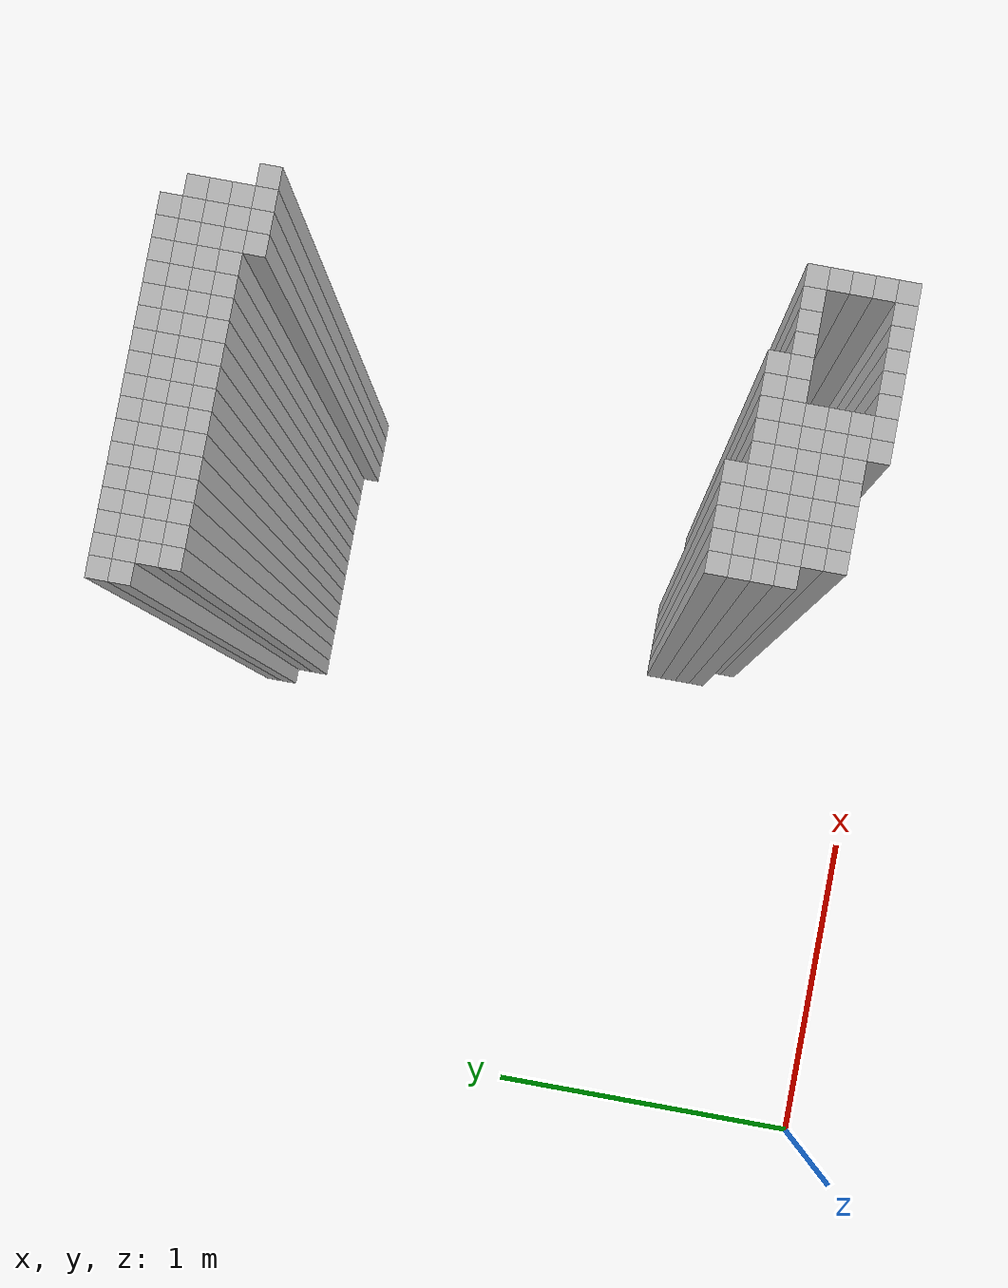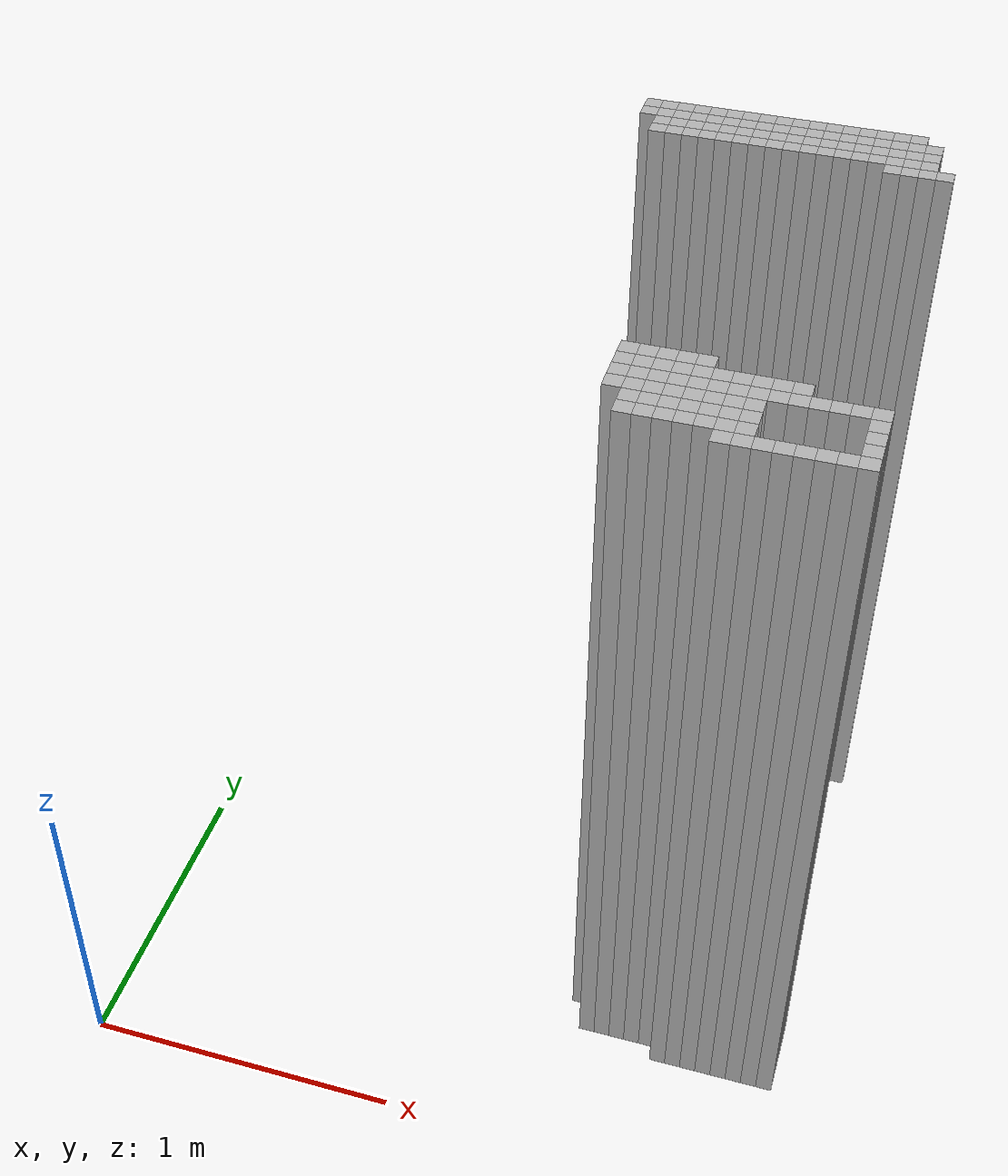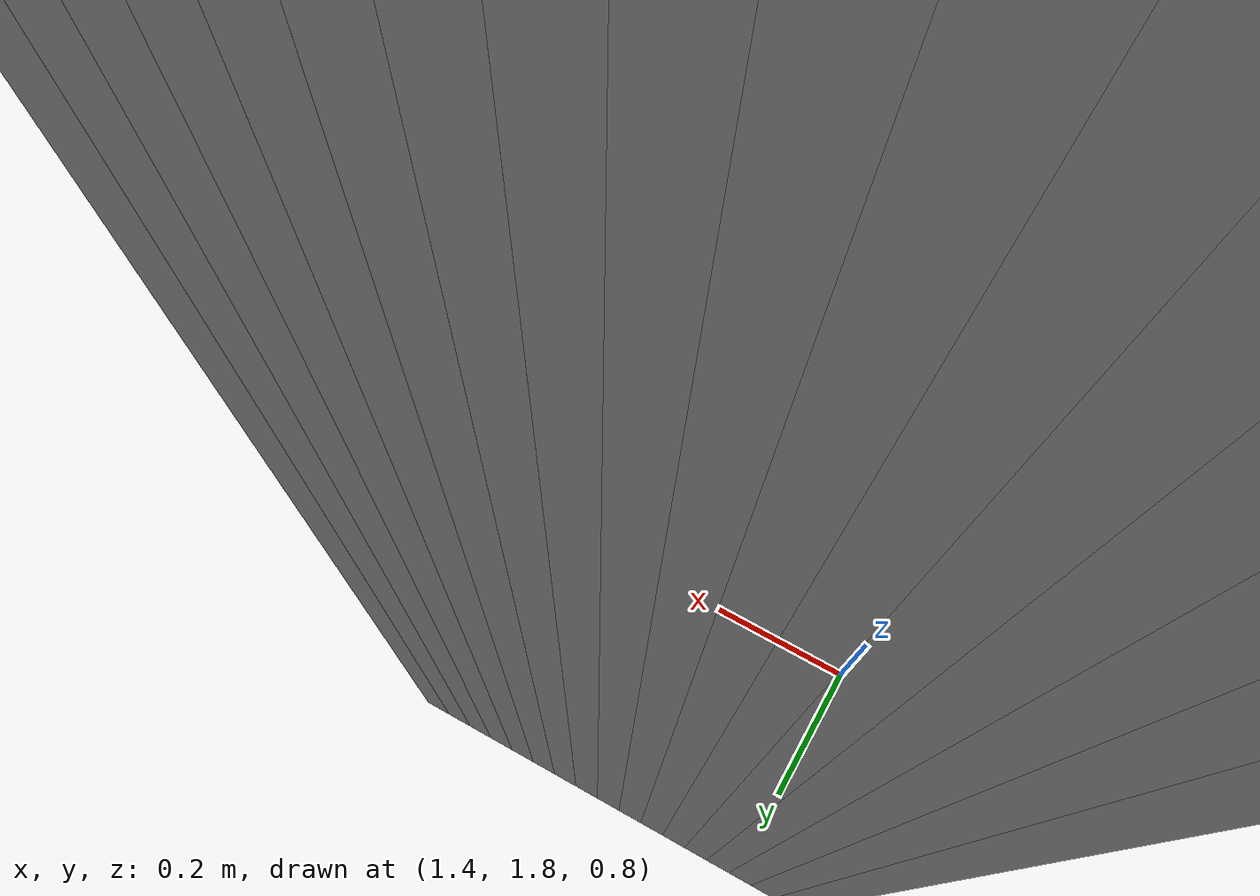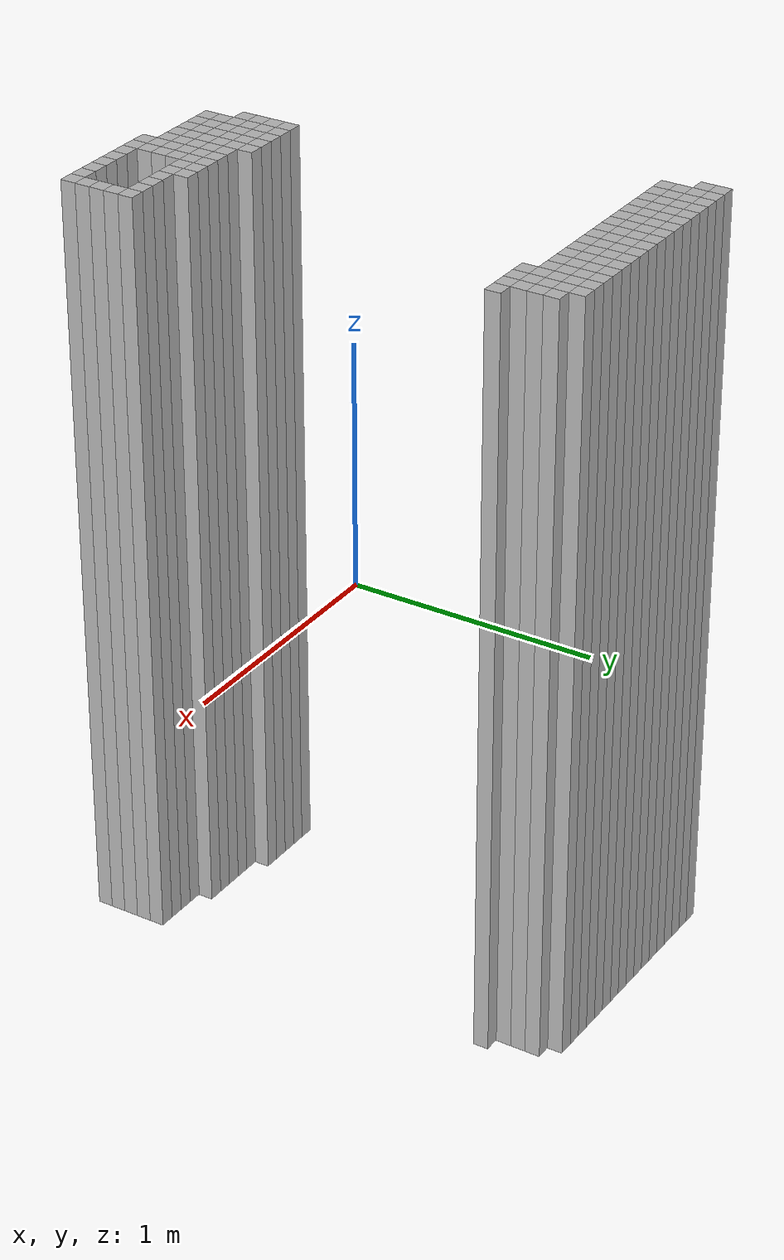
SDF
<sdf version="1.9">
 <world name="map_world">
  <model name="wall_248_113">
   <static>true</static>
   <pose>1.239 2.030 1.250 0 0 0</pose>
   <link name="link">
    <collision name="collision"><geometry><box><size>0.050 0.050 2.500</size></box></geometry></collision>
    <visual name="visual"><geometry><box><size>0.050 0.050 2.500</size></box></geometry></visual>
   </link>
  </model>
  <model name="wall_249_113">
   <static>true</static>
   <pose>1.289 2.030 1.250 0 0 0</pose>
   <link name="link">
    <collision name="collision"><geometry><box><size>0.050 0.050 2.500</size></box></geometry></collision>
    <visual name="visual"><geometry><box><size>0.050 0.050 2.500</size></box></geometry></visual>
   </link>
  </model>
  <model name="wall_250_113">
   <static>true</static>
   <pose>1.339 2.030 1.250 0 0 0</pose>
   <link name="link">
    <collision name="collision"><geometry><box><size>0.050 0.050 2.500</size></box></geometry></collision>
    <visual name="visual"><geometry><box><size>0.050 0.050 2.500</size></box></geometry></visual>
   </link>
  </model>
  <model name="wall_251_113">
   <static>true</static>
   <pose>1.389 2.030 1.250 0 0 0</pose>
   <link name="link">
    <collision name="collision"><geometry><box><size>0.050 0.050 2.500</size></box></geometry></collision>
    <visual name="visual"><geometry><box><size>0.050 0.050 2.500</size></box></geometry></visual>
   </link>
  </model>
  <model name="wall_252_113">
   <static>true</static>
   <pose>1.439 2.030 1.250 0 0 0</pose>
   <link name="link">
    <collision name="collision"><geometry><box><size>0.050 0.050 2.500</size></box></geometry></collision>
    <visual name="visual"><geometry><box><size>0.050 0.050 2.500</size></box></geometry></visual>
   </link>
  </model>
  <model name="wall_253_113">
   <static>true</static>
   <pose>1.489 2.030 1.250 0 0 0</pose>
   <link name="link">
    <collision name="collision"><geometry><box><size>0.050 0.050 2.500</size></box></geometry></collision>
    <visual name="visual"><geometry><box><size>0.050 0.050 2.500</size></box></geometry></visual>
   </link>
  </model>
  <model name="wall_254_113">
   <static>true</static>
   <pose>1.539 2.030 1.250 0 0 0</pose>
   <link name="link">
    <collision name="collision"><geometry><box><size>0.050 0.050 2.500</size></box></geometry></collision>
    <visual name="visual"><geometry><box><size>0.050 0.050 2.500</size></box></geometry></visual>
   </link>
  </model>
  <model name="wall_255_113">
   <static>true</static>
   <pose>1.589 2.030 1.250 0 0 0</pose>
   <link name="link">
    <collision name="collision"><geometry><box><size>0.050 0.050 2.500</size></box></geometry></collision>
    <visual name="visual"><geometry><box><size>0.050 0.050 2.500</size></box></geometry></visual>
   </link>
  </model>
  <model name="wall_256_113">
   <static>true</static>
   <pose>1.639 2.030 1.250 0 0 0</pose>
   <link name="link">
    <collision name="collision"><geometry><box><size>0.050 0.050 2.500</size></box></geometry></collision>
    <visual name="visual"><geometry><box><size>0.050 0.050 2.500</size></box></geometry></visual>
   </link>
  </model>
  <model name="wall_257_113">
   <static>true</static>
   <pose>1.689 2.030 1.250 0 0 0</pose>
   <link name="link">
    <collision name="collision"><geometry><box><size>0.050 0.050 2.500</size></box></geometry></collision>
    <visual name="visual"><geometry><box><size>0.050 0.050 2.500</size></box></geometry></visual>
   </link>
  </model>
  <model name="wall_258_113">
   <static>true</static>
   <pose>1.739 2.030 1.250 0 0 0</pose>
   <link name="link">
    <collision name="collision"><geometry><box><size>0.050 0.050 2.500</size></box></geometry></collision>
    <visual name="visual"><geometry><box><size>0.050 0.050 2.500</size></box></geometry></visual>
   </link>
  </model>
  <model name="wall_259_113">
   <static>true</static>
   <pose>1.789 2.030 1.250 0 0 0</pose>
   <link name="link">
    <collision name="collision"><geometry><box><size>0.050 0.050 2.500</size></box></geometry></collision>
    <visual name="visual"><geometry><box><size>0.050 0.050 2.500</size></box></geometry></visual>
   </link>
  </model>
  <model name="wall_260_113">
   <static>true</static>
   <pose>1.839 2.030 1.250 0 0 0</pose>
   <link name="link">
    <collision name="collision"><geometry><box><size>0.050 0.050 2.500</size></box></geometry></collision>
    <visual name="visual"><geometry><box><size>0.050 0.050 2.500</size></box></geometry></visual>
   </link>
  </model>
  <model name="wall_261_113">
   <static>true</static>
   <pose>1.889 2.030 1.250 0 0 0</pose>
   <link name="link">
    <collision name="collision"><geometry><box><size>0.050 0.050 2.500</size></box></geometry></collision>
    <visual name="visual"><geometry><box><size>0.050 0.050 2.500</size></box></geometry></visual>
   </link>
  </model>
  <model name="wall_262_113">
   <static>true</static>
   <pose>1.939 2.030 1.250 0 0 0</pose>
   <link name="link">
    <collision name="collision"><geometry><box><size>0.050 0.050 2.500</size></box></geometry></collision>
    <visual name="visual"><geometry><box><size>0.050 0.050 2.500</size></box></geometry></visual>
   </link>
  </model>
  <model name="wall_263_113">
   <static>true</static>
   <pose>1.989 2.030 1.250 0 0 0</pose>
   <link name="link">
    <collision name="collision"><geometry><box><size>0.050 0.050 2.500</size></box></geometry></collision>
    <visual name="visual"><geometry><box><size>0.050 0.050 2.500</size></box></geometry></visual>
   </link>
  </model>
  <model name="wall_264_113">
   <static>true</static>
   <pose>2.039 2.030 1.250 0 0 0</pose>
   <link name="link">
    <collision name="collision"><geometry><box><size>0.050 0.050 2.500</size></box></geometry></collision>
    <visual name="visual"><geometry><box><size>0.050 0.050 2.500</size></box></geometry></visual>
   </link>
  </model>
  <model name="wall_248_114">
   <static>true</static>
   <pose>1.239 1.980 1.250 0 0 0</pose>
   <link name="link">
    <collision name="collision"><geometry><box><size>0.050 0.050 2.500</size></box></geometry></collision>
    <visual name="visual"><geometry><box><size>0.050 0.050 2.500</size></box></geometry></visual>
   </link>
  </model>
  <model name="wall_249_114">
   <static>true</static>
   <pose>1.289 1.980 1.250 0 0 0</pose>
   <link name="link">
    <collision name="collision"><geometry><box><size>0.050 0.050 2.500</size></box></geometry></collision>
    <visual name="visual"><geometry><box><size>0.050 0.050 2.500</size></box></geometry></visual>
   </link>
  </model>
  <model name="wall_250_114">
   <static>true</static>
   <pose>1.339 1.980 1.250 0 0 0</pose>
   <link name="link">
    <collision name="collision"><geometry><box><size>0.050 0.050 2.500</size></box></geometry></collision>
    <visual name="visual"><geometry><box><size>0.050 0.050 2.500</size></box></geometry></visual>
   </link>
  </model>
  <model name="wall_251_114">
   <static>true</static>
   <pose>1.389 1.980 1.250 0 0 0</pose>
   <link name="link">
    <collision name="collision"><geometry><box><size>0.050 0.050 2.500</size></box></geometry></collision>
    <visual name="visual"><geometry><box><size>0.050 0.050 2.500</size></box></geometry></visual>
   </link>
  </model>
  <model name="wall_252_114">
   <static>true</static>
   <pose>1.439 1.980 1.250 0 0 0</pose>
   <link name="link">
    <collision name="collision"><geometry><box><size>0.050 0.050 2.500</size></box></geometry></collision>
    <visual name="visual"><geometry><box><size>0.050 0.050 2.500</size></box></geometry></visual>
   </link>
  </model>
  <model name="wall_253_114">
   <static>true</static>
   <pose>1.489 1.980 1.250 0 0 0</pose>
   <link name="link">
    <collision name="collision"><geometry><box><size>0.050 0.050 2.500</size></box></geometry></collision>
    <visual name="visual"><geometry><box><size>0.050 0.050 2.500</size></box></geometry></visual>
   </link>
  </model>
  <model name="wall_254_114">
   <static>true</static>
   <pose>1.539 1.980 1.250 0 0 0</pose>
   <link name="link">
    <collision name="collision"><geometry><box><size>0.050 0.050 2.500</size></box></geometry></collision>
    <visual name="visual"><geometry><box><size>0.050 0.050 2.500</size></box></geometry></visual>
   </link>
  </model>
  <model name="wall_255_114">
   <static>true</static>
   <pose>1.589 1.980 1.250 0 0 0</pose>
   <link name="link">
    <collision name="collision"><geometry><box><size>0.050 0.050 2.500</size></box></geometry></collision>
    <visual name="visual"><geometry><box><size>0.050 0.050 2.500</size></box></geometry></visual>
   </link>
  </model>
  <model name="wall_256_114">
   <static>true</static>
   <pose>1.639 1.980 1.250 0 0 0</pose>
   <link name="link">
    <collision name="collision"><geometry><box><size>0.050 0.050 2.500</size></box></geometry></collision>
    <visual name="visual"><geometry><box><size>0.050 0.050 2.500</size></box></geometry></visual>
   </link>
  </model>
  <model name="wall_257_114">
   <static>true</static>
   <pose>1.689 1.980 1.250 0 0 0</pose>
   <link name="link">
    <collision name="collision"><geometry><box><size>0.050 0.050 2.500</size></box></geometry></collision>
    <visual name="visual"><geometry><box><size>0.050 0.050 2.500</size></box></geometry></visual>
   </link>
  </model>
  <model name="wall_258_114">
   <static>true</static>
   <pose>1.739 1.980 1.250 0 0 0</pose>
   <link name="link">
    <collision name="collision"><geometry><box><size>0.050 0.050 2.500</size></box></geometry></collision>
    <visual name="visual"><geometry><box><size>0.050 0.050 2.500</size></box></geometry></visual>
   </link>
  </model>
  <model name="wall_259_114">
   <static>true</static>
   <pose>1.789 1.980 1.250 0 0 0</pose>
   <link name="link">
    <collision name="collision"><geometry><box><size>0.050 0.050 2.500</size></box></geometry></collision>
    <visual name="visual"><geometry><box><size>0.050 0.050 2.500</size></box></geometry></visual>
   </link>
  </model>
  <model name="wall_260_114">
   <static>true</static>
   <pose>1.839 1.980 1.250 0 0 0</pose>
   <link name="link">
    <collision name="collision"><geometry><box><size>0.050 0.050 2.500</size></box></geometry></collision>
    <visual name="visual"><geometry><box><size>0.050 0.050 2.500</size></box></geometry></visual>
   </link>
  </model>
  <model name="wall_261_114">
   <static>true</static>
   <pose>1.889 1.980 1.250 0 0 0</pose>
   <link name="link">
    <collision name="collision"><geometry><box><size>0.050 0.050 2.500</size></box></geometry></collision>
    <visual name="visual"><geometry><box><size>0.050 0.050 2.500</size></box></geometry></visual>
   </link>
  </model>
  <model name="wall_262_114">
   <static>true</static>
   <pose>1.939 1.980 1.250 0 0 0</pose>
   <link name="link">
    <collision name="collision"><geometry><box><size>0.050 0.050 2.500</size></box></geometry></collision>
    <visual name="visual"><geometry><box><size>0.050 0.050 2.500</size></box></geometry></visual>
   </link>
  </model>
  <model name="wall_263_114">
   <static>true</static>
   <pose>1.989 1.980 1.250 0 0 0</pose>
   <link name="link">
    <collision name="collision"><geometry><box><size>0.050 0.050 2.500</size></box></geometry></collision>
    <visual name="visual"><geometry><box><size>0.050 0.050 2.500</size></box></geometry></visual>
   </link>
  </model>
  <model name="wall_264_114">
   <static>true</static>
   <pose>2.039 1.980 1.250 0 0 0</pose>
   <link name="link">
    <collision name="collision"><geometry><box><size>0.050 0.050 2.500</size></box></geometry></collision>
    <visual name="visual"><geometry><box><size>0.050 0.050 2.500</size></box></geometry></visual>
   </link>
  </model>
  <model name="wall_265_114">
   <static>true</static>
   <pose>2.089 1.980 1.250 0 0 0</pose>
   <link name="link">
    <collision name="collision"><geometry><box><size>0.050 0.050 2.500</size></box></geometry></collision>
    <visual name="visual"><geometry><box><size>0.050 0.050 2.500</size></box></geometry></visual>
   </link>
  </model>
  <model name="wall_249_115">
   <static>true</static>
   <pose>1.289 1.930 1.250 0 0 0</pose>
   <link name="link">
    <collision name="collision"><geometry><box><size>0.050 0.050 2.500</size></box></geometry></collision>
    <visual name="visual"><geometry><box><size>0.050 0.050 2.500</size></box></geometry></visual>
   </link>
  </model>
  <model name="wall_250_115">
   <static>true</static>
   <pose>1.339 1.930 1.250 0 0 0</pose>
   <link name="link">
    <collision name="collision"><geometry><box><size>0.050 0.050 2.500</size></box></geometry></collision>
    <visual name="visual"><geometry><box><size>0.050 0.050 2.500</size></box></geometry></visual>
   </link>
  </model>
  <model name="wall_251_115">
   <static>true</static>
   <pose>1.389 1.930 1.250 0 0 0</pose>
   <link name="link">
    <collision name="collision"><geometry><box><size>0.050 0.050 2.500</size></box></geometry></collision>
    <visual name="visual"><geometry><box><size>0.050 0.050 2.500</size></box></geometry></visual>
   </link>
  </model>
  <model name="wall_252_115">
   <static>true</static>
   <pose>1.439 1.930 1.250 0 0 0</pose>
   <link name="link">
    <collision name="collision"><geometry><box><size>0.050 0.050 2.500</size></box></geometry></collision>
    <visual name="visual"><geometry><box><size>0.050 0.050 2.500</size></box></geometry></visual>
   </link>
  </model>
  <model name="wall_253_115">
   <static>true</static>
   <pose>1.489 1.930 1.250 0 0 0</pose>
   <link name="link">
    <collision name="collision"><geometry><box><size>0.050 0.050 2.500</size></box></geometry></collision>
    <visual name="visual"><geometry><box><size>0.050 0.050 2.500</size></box></geometry></visual>
   </link>
  </model>
  <model name="wall_254_115">
   <static>true</static>
   <pose>1.539 1.930 1.250 0 0 0</pose>
   <link name="link">
    <collision name="collision"><geometry><box><size>0.050 0.050 2.500</size></box></geometry></collision>
    <visual name="visual"><geometry><box><size>0.050 0.050 2.500</size></box></geometry></visual>
   </link>
  </model>
  <model name="wall_255_115">
   <static>true</static>
   <pose>1.589 1.930 1.250 0 0 0</pose>
   <link name="link">
    <collision name="collision"><geometry><box><size>0.050 0.050 2.500</size></box></geometry></collision>
    <visual name="visual"><geometry><box><size>0.050 0.050 2.500</size></box></geometry></visual>
   </link>
  </model>
  <model name="wall_256_115">
   <static>true</static>
   <pose>1.639 1.930 1.250 0 0 0</pose>
   <link name="link">
    <collision name="collision"><geometry><box><size>0.050 0.050 2.500</size></box></geometry></collision>
    <visual name="visual"><geometry><box><size>0.050 0.050 2.500</size></box></geometry></visual>
   </link>
  </model>
  <model name="wall_257_115">
   <static>true</static>
   <pose>1.689 1.930 1.250 0 0 0</pose>
   <link name="link">
    <collision name="collision"><geometry><box><size>0.050 0.050 2.500</size></box></geometry></collision>
    <visual name="visual"><geometry><box><size>0.050 0.050 2.500</size></box></geometry></visual>
   </link>
  </model>
  <model name="wall_258_115">
   <static>true</static>
   <pose>1.739 1.930 1.250 0 0 0</pose>
   <link name="link">
    <collision name="collision"><geometry><box><size>0.050 0.050 2.500</size></box></geometry></collision>
    <visual name="visual"><geometry><box><size>0.050 0.050 2.500</size></box></geometry></visual>
   </link>
  </model>
  <model name="wall_259_115">
   <static>true</static>
   <pose>1.789 1.930 1.250 0 0 0</pose>
   <link name="link">
    <collision name="collision"><geometry><box><size>0.050 0.050 2.500</size></box></geometry></collision>
    <visual name="visual"><geometry><box><size>0.050 0.050 2.500</size></box></geometry></visual>
   </link>
  </model>
  <model name="wall_260_115">
   <static>true</static>
   <pose>1.839 1.930 1.250 0 0 0</pose>
   <link name="link">
    <collision name="collision"><geometry><box><size>0.050 0.050 2.500</size></box></geometry></collision>
    <visual name="visual"><geometry><box><size>0.050 0.050 2.500</size></box></geometry></visual>
   </link>
  </model>
  <model name="wall_261_115">
   <static>true</static>
   <pose>1.889 1.930 1.250 0 0 0</pose>
   <link name="link">
    <collision name="collision"><geometry><box><size>0.050 0.050 2.500</size></box></geometry></collision>
    <visual name="visual"><geometry><box><size>0.050 0.050 2.500</size></box></geometry></visual>
   </link>
  </model>
  <model name="wall_262_115">
   <static>true</static>
   <pose>1.939 1.930 1.250 0 0 0</pose>
   <link name="link">
    <collision name="collision"><geometry><box><size>0.050 0.050 2.500</size></box></geometry></collision>
    <visual name="visual"><geometry><box><size>0.050 0.050 2.500</size></box></geometry></visual>
   </link>
  </model>
  <model name="wall_263_115">
   <static>true</static>
   <pose>1.989 1.930 1.250 0 0 0</pose>
   <link name="link">
    <collision name="collision"><geometry><box><size>0.050 0.050 2.500</size></box></geometry></collision>
    <visual name="visual"><geometry><box><size>0.050 0.050 2.500</size></box></geometry></visual>
   </link>
  </model>
  <model name="wall_264_115">
   <static>true</static>
   <pose>2.039 1.930 1.250 0 0 0</pose>
   <link name="link">
    <collision name="collision"><geometry><box><size>0.050 0.050 2.500</size></box></geometry></collision>
    <visual name="visual"><geometry><box><size>0.050 0.050 2.500</size></box></geometry></visual>
   </link>
  </model>
  <model name="wall_265_115">
   <static>true</static>
   <pose>2.089 1.930 1.250 0 0 0</pose>
   <link name="link">
    <collision name="collision"><geometry><box><size>0.050 0.050 2.500</size></box></geometry></collision>
    <visual name="visual"><geometry><box><size>0.050 0.050 2.500</size></box></geometry></visual>
   </link>
  </model>
  <model name="wall_249_116">
   <static>true</static>
   <pose>1.289 1.880 1.250 0 0 0</pose>
   <link name="link">
    <collision name="collision"><geometry><box><size>0.050 0.050 2.500</size></box></geometry></collision>
    <visual name="visual"><geometry><box><size>0.050 0.050 2.500</size></box></geometry></visual>
   </link>
  </model>
  <model name="wall_250_116">
   <static>true</static>
   <pose>1.339 1.880 1.250 0 0 0</pose>
   <link name="link">
    <collision name="collision"><geometry><box><size>0.050 0.050 2.500</size></box></geometry></collision>
    <visual name="visual"><geometry><box><size>0.050 0.050 2.500</size></box></geometry></visual>
   </link>
  </model>
  <model name="wall_251_116">
   <static>true</static>
   <pose>1.389 1.880 1.250 0 0 0</pose>
   <link name="link">
    <collision name="collision"><geometry><box><size>0.050 0.050 2.500</size></box></geometry></collision>
    <visual name="visual"><geometry><box><size>0.050 0.050 2.500</size></box></geometry></visual>
   </link>
  </model>
  <model name="wall_252_116">
   <static>true</static>
   <pose>1.439 1.880 1.250 0 0 0</pose>
   <link name="link">
    <collision name="collision"><geometry><box><size>0.050 0.050 2.500</size></box></geometry></collision>
    <visual name="visual"><geometry><box><size>0.050 0.050 2.500</size></box></geometry></visual>
   </link>
  </model>
  <model name="wall_253_116">
   <static>true</static>
   <pose>1.489 1.880 1.250 0 0 0</pose>
   <link name="link">
    <collision name="collision"><geometry><box><size>0.050 0.050 2.500</size></box></geometry></collision>
    <visual name="visual"><geometry><box><size>0.050 0.050 2.500</size></box></geometry></visual>
   </link>
  </model>
  <model name="wall_254_116">
   <static>true</static>
   <pose>1.539 1.880 1.250 0 0 0</pose>
   <link name="link">
    <collision name="collision"><geometry><box><size>0.050 0.050 2.500</size></box></geometry></collision>
    <visual name="visual"><geometry><box><size>0.050 0.050 2.500</size></box></geometry></visual>
   </link>
  </model>
  <model name="wall_255_116">
   <static>true</static>
   <pose>1.589 1.880 1.250 0 0 0</pose>
   <link name="link">
    <collision name="collision"><geometry><box><size>0.050 0.050 2.500</size></box></geometry></collision>
    <visual name="visual"><geometry><box><size>0.050 0.050 2.500</size></box></geometry></visual>
   </link>
  </model>
  <model name="wall_256_116">
   <static>true</static>
   <pose>1.639 1.880 1.250 0 0 0</pose>
   <link name="link">
    <collision name="collision"><geometry><box><size>0.050 0.050 2.500</size></box></geometry></collision>
    <visual name="visual"><geometry><box><size>0.050 0.050 2.500</size></box></geometry></visual>
   </link>
  </model>
  <model name="wall_257_116">
   <static>true</static>
   <pose>1.689 1.880 1.250 0 0 0</pose>
   <link name="link">
    <collision name="collision"><geometry><box><size>0.050 0.050 2.500</size></box></geometry></collision>
    <visual name="visual"><geometry><box><size>0.050 0.050 2.500</size></box></geometry></visual>
   </link>
  </model>
  <model name="wall_258_116">
   <static>true</static>
   <pose>1.739 1.880 1.250 0 0 0</pose>
   <link name="link">
    <collision name="collision"><geometry><box><size>0.050 0.050 2.500</size></box></geometry></collision>
    <visual name="visual"><geometry><box><size>0.050 0.050 2.500</size></box></geometry></visual>
   </link>
  </model>
  <model name="wall_259_116">
   <static>true</static>
   <pose>1.789 1.880 1.250 0 0 0</pose>
   <link name="link">
    <collision name="collision"><geometry><box><size>0.050 0.050 2.500</size></box></geometry></collision>
    <visual name="visual"><geometry><box><size>0.050 0.050 2.500</size></box></geometry></visual>
   </link>
  </model>
  <model name="wall_260_116">
   <static>true</static>
   <pose>1.839 1.880 1.250 0 0 0</pose>
   <link name="link">
    <collision name="collision"><geometry><box><size>0.050 0.050 2.500</size></box></geometry></collision>
    <visual name="visual"><geometry><box><size>0.050 0.050 2.500</size></box></geometry></visual>
   </link>
  </model>
  <model name="wall_261_116">
   <static>true</static>
   <pose>1.889 1.880 1.250 0 0 0</pose>
   <link name="link">
    <collision name="collision"><geometry><box><size>0.050 0.050 2.500</size></box></geometry></collision>
    <visual name="visual"><geometry><box><size>0.050 0.050 2.500</size></box></geometry></visual>
   </link>
  </model>
  <model name="wall_262_116">
   <static>true</static>
   <pose>1.939 1.880 1.250 0 0 0</pose>
   <link name="link">
    <collision name="collision"><geometry><box><size>0.050 0.050 2.500</size></box></geometry></collision>
    <visual name="visual"><geometry><box><size>0.050 0.050 2.500</size></box></geometry></visual>
   </link>
  </model>
  <model name="wall_263_116">
   <static>true</static>
   <pose>1.989 1.880 1.250 0 0 0</pose>
   <link name="link">
    <collision name="collision"><geometry><box><size>0.050 0.050 2.500</size></box></geometry></collision>
    <visual name="visual"><geometry><box><size>0.050 0.050 2.500</size></box></geometry></visual>
   </link>
  </model>
  <model name="wall_264_116">
   <static>true</static>
   <pose>2.039 1.880 1.250 0 0 0</pose>
   <link name="link">
    <collision name="collision"><geometry><box><size>0.050 0.050 2.500</size></box></geometry></collision>
    <visual name="visual"><geometry><box><size>0.050 0.050 2.500</size></box></geometry></visual>
   </link>
  </model>
  <model name="wall_265_116">
   <static>true</static>
   <pose>2.089 1.880 1.250 0 0 0</pose>
   <link name="link">
    <collision name="collision"><geometry><box><size>0.050 0.050 2.500</size></box></geometry></collision>
    <visual name="visual"><geometry><box><size>0.050 0.050 2.500</size></box></geometry></visual>
   </link>
  </model>
  <model name="wall_263_117">
   <static>true</static>
   <pose>1.989 1.830 1.250 0 0 0</pose>
   <link name="link">
    <collision name="collision"><geometry><box><size>0.050 0.050 2.500</size></box></geometry></collision>
    <visual name="visual"><geometry><box><size>0.050 0.050 2.500</size></box></geometry></visual>
   </link>
  </model>
  <model name="wall_264_117">
   <static>true</static>
   <pose>2.039 1.830 1.250 0 0 0</pose>
   <link name="link">
    <collision name="collision"><geometry><box><size>0.050 0.050 2.500</size></box></geometry></collision>
    <visual name="visual"><geometry><box><size>0.050 0.050 2.500</size></box></geometry></visual>
   </link>
  </model>
  <model name="wall_265_117">
   <static>true</static>
   <pose>2.089 1.830 1.250 0 0 0</pose>
   <link name="link">
    <collision name="collision"><geometry><box><size>0.050 0.050 2.500</size></box></geometry></collision>
    <visual name="visual"><geometry><box><size>0.050 0.050 2.500</size></box></geometry></visual>
   </link>
  </model>
  <model name="wall_266_117">
   <static>true</static>
   <pose>2.139 1.830 1.250 0 0 0</pose>
   <link name="link">
    <collision name="collision"><geometry><box><size>0.050 0.050 2.500</size></box></geometry></collision>
    <visual name="visual"><geometry><box><size>0.050 0.050 2.500</size></box></geometry></visual>
   </link>
  </model>
  <model name="wall_253_139">
   <static>true</static>
   <pose>1.489 0.730 1.250 0 0 0</pose>
   <link name="link">
    <collision name="collision"><geometry><box><size>0.050 0.050 2.500</size></box></geometry></collision>
    <visual name="visual"><geometry><box><size>0.050 0.050 2.500</size></box></geometry></visual>
   </link>
  </model>
  <model name="wall_254_139">
   <static>true</static>
   <pose>1.539 0.730 1.250 0 0 0</pose>
   <link name="link">
    <collision name="collision"><geometry><box><size>0.050 0.050 2.500</size></box></geometry></collision>
    <visual name="visual"><geometry><box><size>0.050 0.050 2.500</size></box></geometry></visual>
   </link>
  </model>
  <model name="wall_255_139">
   <static>true</static>
   <pose>1.589 0.730 1.250 0 0 0</pose>
   <link name="link">
    <collision name="collision"><geometry><box><size>0.050 0.050 2.500</size></box></geometry></collision>
    <visual name="visual"><geometry><box><size>0.050 0.050 2.500</size></box></geometry></visual>
   </link>
  </model>
  <model name="wall_256_139">
   <static>true</static>
   <pose>1.639 0.730 1.250 0 0 0</pose>
   <link name="link">
    <collision name="collision"><geometry><box><size>0.050 0.050 2.500</size></box></geometry></collision>
    <visual name="visual"><geometry><box><size>0.050 0.050 2.500</size></box></geometry></visual>
   </link>
  </model>
  <model name="wall_257_139">
   <static>true</static>
   <pose>1.689 0.730 1.250 0 0 0</pose>
   <link name="link">
    <collision name="collision"><geometry><box><size>0.050 0.050 2.500</size></box></geometry></collision>
    <visual name="visual"><geometry><box><size>0.050 0.050 2.500</size></box></geometry></visual>
   </link>
  </model>
  <model name="wall_253_140">
   <static>true</static>
   <pose>1.489 0.680 1.250 0 0 0</pose>
   <link name="link">
    <collision name="collision"><geometry><box><size>0.050 0.050 2.500</size></box></geometry></collision>
    <visual name="visual"><geometry><box><size>0.050 0.050 2.500</size></box></geometry></visual>
   </link>
  </model>
  <model name="wall_254_140">
   <static>true</static>
   <pose>1.539 0.680 1.250 0 0 0</pose>
   <link name="link">
    <collision name="collision"><geometry><box><size>0.050 0.050 2.500</size></box></geometry></collision>
    <visual name="visual"><geometry><box><size>0.050 0.050 2.500</size></box></geometry></visual>
   </link>
  </model>
  <model name="wall_255_140">
   <static>true</static>
   <pose>1.589 0.680 1.250 0 0 0</pose>
   <link name="link">
    <collision name="collision"><geometry><box><size>0.050 0.050 2.500</size></box></geometry></collision>
    <visual name="visual"><geometry><box><size>0.050 0.050 2.500</size></box></geometry></visual>
   </link>
  </model>
  <model name="wall_256_140">
   <static>true</static>
   <pose>1.639 0.680 1.250 0 0 0</pose>
   <link name="link">
    <collision name="collision"><geometry><box><size>0.050 0.050 2.500</size></box></geometry></collision>
    <visual name="visual"><geometry><box><size>0.050 0.050 2.500</size></box></geometry></visual>
   </link>
  </model>
  <model name="wall_257_140">
   <static>true</static>
   <pose>1.689 0.680 1.250 0 0 0</pose>
   <link name="link">
    <collision name="collision"><geometry><box><size>0.050 0.050 2.500</size></box></geometry></collision>
    <visual name="visual"><geometry><box><size>0.050 0.050 2.500</size></box></geometry></visual>
   </link>
  </model>
  <model name="wall_258_140">
   <static>true</static>
   <pose>1.739 0.680 1.250 0 0 0</pose>
   <link name="link">
    <collision name="collision"><geometry><box><size>0.050 0.050 2.500</size></box></geometry></collision>
    <visual name="visual"><geometry><box><size>0.050 0.050 2.500</size></box></geometry></visual>
   </link>
  </model>
  <model name="wall_259_140">
   <static>true</static>
   <pose>1.789 0.680 1.250 0 0 0</pose>
   <link name="link">
    <collision name="collision"><geometry><box><size>0.050 0.050 2.500</size></box></geometry></collision>
    <visual name="visual"><geometry><box><size>0.050 0.050 2.500</size></box></geometry></visual>
   </link>
  </model>
  <model name="wall_260_140">
   <static>true</static>
   <pose>1.839 0.680 1.250 0 0 0</pose>
   <link name="link">
    <collision name="collision"><geometry><box><size>0.050 0.050 2.500</size></box></geometry></collision>
    <visual name="visual"><geometry><box><size>0.050 0.050 2.500</size></box></geometry></visual>
   </link>
  </model>
  <model name="wall_261_140">
   <static>true</static>
   <pose>1.889 0.680 1.250 0 0 0</pose>
   <link name="link">
    <collision name="collision"><geometry><box><size>0.050 0.050 2.500</size></box></geometry></collision>
    <visual name="visual"><geometry><box><size>0.050 0.050 2.500</size></box></geometry></visual>
   </link>
  </model>
  <model name="wall_262_140">
   <static>true</static>
   <pose>1.939 0.680 1.250 0 0 0</pose>
   <link name="link">
    <collision name="collision"><geometry><box><size>0.050 0.050 2.500</size></box></geometry></collision>
    <visual name="visual"><geometry><box><size>0.050 0.050 2.500</size></box></geometry></visual>
   </link>
  </model>
  <model name="wall_253_141">
   <static>true</static>
   <pose>1.489 0.630 1.250 0 0 0</pose>
   <link name="link">
    <collision name="collision"><geometry><box><size>0.050 0.050 2.500</size></box></geometry></collision>
    <visual name="visual"><geometry><box><size>0.050 0.050 2.500</size></box></geometry></visual>
   </link>
  </model>
  <model name="wall_254_141">
   <static>true</static>
   <pose>1.539 0.630 1.250 0 0 0</pose>
   <link name="link">
    <collision name="collision"><geometry><box><size>0.050 0.050 2.500</size></box></geometry></collision>
    <visual name="visual"><geometry><box><size>0.050 0.050 2.500</size></box></geometry></visual>
   </link>
  </model>
  <model name="wall_255_141">
   <static>true</static>
   <pose>1.589 0.630 1.250 0 0 0</pose>
   <link name="link">
    <collision name="collision"><geometry><box><size>0.050 0.050 2.500</size></box></geometry></collision>
    <visual name="visual"><geometry><box><size>0.050 0.050 2.500</size></box></geometry></visual>
   </link>
  </model>
  <model name="wall_256_141">
   <static>true</static>
   <pose>1.639 0.630 1.250 0 0 0</pose>
   <link name="link">
    <collision name="collision"><geometry><box><size>0.050 0.050 2.500</size></box></geometry></collision>
    <visual name="visual"><geometry><box><size>0.050 0.050 2.500</size></box></geometry></visual>
   </link>
  </model>
  <model name="wall_257_141">
   <static>true</static>
   <pose>1.689 0.630 1.250 0 0 0</pose>
   <link name="link">
    <collision name="collision"><geometry><box><size>0.050 0.050 2.500</size></box></geometry></collision>
    <visual name="visual"><geometry><box><size>0.050 0.050 2.500</size></box></geometry></visual>
   </link>
  </model>
  <model name="wall_258_141">
   <static>true</static>
   <pose>1.739 0.630 1.250 0 0 0</pose>
   <link name="link">
    <collision name="collision"><geometry><box><size>0.050 0.050 2.500</size></box></geometry></collision>
    <visual name="visual"><geometry><box><size>0.050 0.050 2.500</size></box></geometry></visual>
   </link>
  </model>
  <model name="wall_259_141">
   <static>true</static>
   <pose>1.789 0.630 1.250 0 0 0</pose>
   <link name="link">
    <collision name="collision"><geometry><box><size>0.050 0.050 2.500</size></box></geometry></collision>
    <visual name="visual"><geometry><box><size>0.050 0.050 2.500</size></box></geometry></visual>
   </link>
  </model>
  <model name="wall_260_141">
   <static>true</static>
   <pose>1.839 0.630 1.250 0 0 0</pose>
   <link name="link">
    <collision name="collision"><geometry><box><size>0.050 0.050 2.500</size></box></geometry></collision>
    <visual name="visual"><geometry><box><size>0.050 0.050 2.500</size></box></geometry></visual>
   </link>
  </model>
  <model name="wall_261_141">
   <static>true</static>
   <pose>1.889 0.630 1.250 0 0 0</pose>
   <link name="link">
    <collision name="collision"><geometry><box><size>0.050 0.050 2.500</size></box></geometry></collision>
    <visual name="visual"><geometry><box><size>0.050 0.050 2.500</size></box></geometry></visual>
   </link>
  </model>
  <model name="wall_262_141">
   <static>true</static>
   <pose>1.939 0.630 1.250 0 0 0</pose>
   <link name="link">
    <collision name="collision"><geometry><box><size>0.050 0.050 2.500</size></box></geometry></collision>
    <visual name="visual"><geometry><box><size>0.050 0.050 2.500</size></box></geometry></visual>
   </link>
  </model>
  <model name="wall_263_141">
   <static>true</static>
   <pose>1.989 0.630 1.250 0 0 0</pose>
   <link name="link">
    <collision name="collision"><geometry><box><size>0.050 0.050 2.500</size></box></geometry></collision>
    <visual name="visual"><geometry><box><size>0.050 0.050 2.500</size></box></geometry></visual>
   </link>
  </model>
  <model name="wall_264_141">
   <static>true</static>
   <pose>2.039 0.630 1.250 0 0 0</pose>
   <link name="link">
    <collision name="collision"><geometry><box><size>0.050 0.050 2.500</size></box></geometry></collision>
    <visual name="visual"><geometry><box><size>0.050 0.050 2.500</size></box></geometry></visual>
   </link>
  </model>
  <model name="wall_265_141">
   <static>true</static>
   <pose>2.089 0.630 1.250 0 0 0</pose>
   <link name="link">
    <collision name="collision"><geometry><box><size>0.050 0.050 2.500</size></box></geometry></collision>
    <visual name="visual"><geometry><box><size>0.050 0.050 2.500</size></box></geometry></visual>
   </link>
  </model>
  <model name="wall_266_141">
   <static>true</static>
   <pose>2.139 0.630 1.250 0 0 0</pose>
   <link name="link">
    <collision name="collision"><geometry><box><size>0.050 0.050 2.500</size></box></geometry></collision>
    <visual name="visual"><geometry><box><size>0.050 0.050 2.500</size></box></geometry></visual>
   </link>
  </model>
  <model name="wall_253_142">
   <static>true</static>
   <pose>1.489 0.580 1.250 0 0 0</pose>
   <link name="link">
    <collision name="collision"><geometry><box><size>0.050 0.050 2.500</size></box></geometry></collision>
    <visual name="visual"><geometry><box><size>0.050 0.050 2.500</size></box></geometry></visual>
   </link>
  </model>
  <model name="wall_254_142">
   <static>true</static>
   <pose>1.539 0.580 1.250 0 0 0</pose>
   <link name="link">
    <collision name="collision"><geometry><box><size>0.050 0.050 2.500</size></box></geometry></collision>
    <visual name="visual"><geometry><box><size>0.050 0.050 2.500</size></box></geometry></visual>
   </link>
  </model>
  <model name="wall_255_142">
   <static>true</static>
   <pose>1.589 0.580 1.250 0 0 0</pose>
   <link name="link">
    <collision name="collision"><geometry><box><size>0.050 0.050 2.500</size></box></geometry></collision>
    <visual name="visual"><geometry><box><size>0.050 0.050 2.500</size></box></geometry></visual>
   </link>
  </model>
  <model name="wall_256_142">
   <static>true</static>
   <pose>1.639 0.580 1.250 0 0 0</pose>
   <link name="link">
    <collision name="collision"><geometry><box><size>0.050 0.050 2.500</size></box></geometry></collision>
    <visual name="visual"><geometry><box><size>0.050 0.050 2.500</size></box></geometry></visual>
   </link>
  </model>
  <model name="wall_257_142">
   <static>true</static>
   <pose>1.689 0.580 1.250 0 0 0</pose>
   <link name="link">
    <collision name="collision"><geometry><box><size>0.050 0.050 2.500</size></box></geometry></collision>
    <visual name="visual"><geometry><box><size>0.050 0.050 2.500</size></box></geometry></visual>
   </link>
  </model>
  <model name="wall_258_142">
   <static>true</static>
   <pose>1.739 0.580 1.250 0 0 0</pose>
   <link name="link">
    <collision name="collision"><geometry><box><size>0.050 0.050 2.500</size></box></geometry></collision>
    <visual name="visual"><geometry><box><size>0.050 0.050 2.500</size></box></geometry></visual>
   </link>
  </model>
  <model name="wall_259_142">
   <static>true</static>
   <pose>1.789 0.580 1.250 0 0 0</pose>
   <link name="link">
    <collision name="collision"><geometry><box><size>0.050 0.050 2.500</size></box></geometry></collision>
    <visual name="visual"><geometry><box><size>0.050 0.050 2.500</size></box></geometry></visual>
   </link>
  </model>
  <model name="wall_260_142">
   <static>true</static>
   <pose>1.839 0.580 1.250 0 0 0</pose>
   <link name="link">
    <collision name="collision"><geometry><box><size>0.050 0.050 2.500</size></box></geometry></collision>
    <visual name="visual"><geometry><box><size>0.050 0.050 2.500</size></box></geometry></visual>
   </link>
  </model>
  <model name="wall_266_142">
   <static>true</static>
   <pose>2.139 0.580 1.250 0 0 0</pose>
   <link name="link">
    <collision name="collision"><geometry><box><size>0.050 0.050 2.500</size></box></geometry></collision>
    <visual name="visual"><geometry><box><size>0.050 0.050 2.500</size></box></geometry></visual>
   </link>
  </model>
  <model name="wall_254_143">
   <static>true</static>
   <pose>1.539 0.530 1.250 0 0 0</pose>
   <link name="link">
    <collision name="collision"><geometry><box><size>0.050 0.050 2.500</size></box></geometry></collision>
    <visual name="visual"><geometry><box><size>0.050 0.050 2.500</size></box></geometry></visual>
   </link>
  </model>
  <model name="wall_255_143">
   <static>true</static>
   <pose>1.589 0.530 1.250 0 0 0</pose>
   <link name="link">
    <collision name="collision"><geometry><box><size>0.050 0.050 2.500</size></box></geometry></collision>
    <visual name="visual"><geometry><box><size>0.050 0.050 2.500</size></box></geometry></visual>
   </link>
  </model>
  <model name="wall_256_143">
   <static>true</static>
   <pose>1.639 0.530 1.250 0 0 0</pose>
   <link name="link">
    <collision name="collision"><geometry><box><size>0.050 0.050 2.500</size></box></geometry></collision>
    <visual name="visual"><geometry><box><size>0.050 0.050 2.500</size></box></geometry></visual>
   </link>
  </model>
  <model name="wall_257_143">
   <static>true</static>
   <pose>1.689 0.530 1.250 0 0 0</pose>
   <link name="link">
    <collision name="collision"><geometry><box><size>0.050 0.050 2.500</size></box></geometry></collision>
    <visual name="visual"><geometry><box><size>0.050 0.050 2.500</size></box></geometry></visual>
   </link>
  </model>
  <model name="wall_258_143">
   <static>true</static>
   <pose>1.739 0.530 1.250 0 0 0</pose>
   <link name="link">
    <collision name="collision"><geometry><box><size>0.050 0.050 2.500</size></box></geometry></collision>
    <visual name="visual"><geometry><box><size>0.050 0.050 2.500</size></box></geometry></visual>
   </link>
  </model>
  <model name="wall_259_143">
   <static>true</static>
   <pose>1.789 0.530 1.250 0 0 0</pose>
   <link name="link">
    <collision name="collision"><geometry><box><size>0.050 0.050 2.500</size></box></geometry></collision>
    <visual name="visual"><geometry><box><size>0.050 0.050 2.500</size></box></geometry></visual>
   </link>
  </model>
  <model name="wall_260_143">
   <static>true</static>
   <pose>1.839 0.530 1.250 0 0 0</pose>
   <link name="link">
    <collision name="collision"><geometry><box><size>0.050 0.050 2.500</size></box></geometry></collision>
    <visual name="visual"><geometry><box><size>0.050 0.050 2.500</size></box></geometry></visual>
   </link>
  </model>
  <model name="wall_266_143">
   <static>true</static>
   <pose>2.139 0.530 1.250 0 0 0</pose>
   <link name="link">
    <collision name="collision"><geometry><box><size>0.050 0.050 2.500</size></box></geometry></collision>
    <visual name="visual"><geometry><box><size>0.050 0.050 2.500</size></box></geometry></visual>
   </link>
  </model>
  <model name="wall_254_144">
   <static>true</static>
   <pose>1.539 0.480 1.250 0 0 0</pose>
   <link name="link">
    <collision name="collision"><geometry><box><size>0.050 0.050 2.500</size></box></geometry></collision>
    <visual name="visual"><geometry><box><size>0.050 0.050 2.500</size></box></geometry></visual>
   </link>
  </model>
  <model name="wall_255_144">
   <static>true</static>
   <pose>1.589 0.480 1.250 0 0 0</pose>
   <link name="link">
    <collision name="collision"><geometry><box><size>0.050 0.050 2.500</size></box></geometry></collision>
    <visual name="visual"><geometry><box><size>0.050 0.050 2.500</size></box></geometry></visual>
   </link>
  </model>
  <model name="wall_256_144">
   <static>true</static>
   <pose>1.639 0.480 1.250 0 0 0</pose>
   <link name="link">
    <collision name="collision"><geometry><box><size>0.050 0.050 2.500</size></box></geometry></collision>
    <visual name="visual"><geometry><box><size>0.050 0.050 2.500</size></box></geometry></visual>
   </link>
  </model>
  <model name="wall_257_144">
   <static>true</static>
   <pose>1.689 0.480 1.250 0 0 0</pose>
   <link name="link">
    <collision name="collision"><geometry><box><size>0.050 0.050 2.500</size></box></geometry></collision>
    <visual name="visual"><geometry><box><size>0.050 0.050 2.500</size></box></geometry></visual>
   </link>
  </model>
  <model name="wall_258_144">
   <static>true</static>
   <pose>1.739 0.480 1.250 0 0 0</pose>
   <link name="link">
    <collision name="collision"><geometry><box><size>0.050 0.050 2.500</size></box></geometry></collision>
    <visual name="visual"><geometry><box><size>0.050 0.050 2.500</size></box></geometry></visual>
   </link>
  </model>
  <model name="wall_259_144">
   <static>true</static>
   <pose>1.789 0.480 1.250 0 0 0</pose>
   <link name="link">
    <collision name="collision"><geometry><box><size>0.050 0.050 2.500</size></box></geometry></collision>
    <visual name="visual"><geometry><box><size>0.050 0.050 2.500</size></box></geometry></visual>
   </link>
  </model>
  <model name="wall_260_144">
   <static>true</static>
   <pose>1.839 0.480 1.250 0 0 0</pose>
   <link name="link">
    <collision name="collision"><geometry><box><size>0.050 0.050 2.500</size></box></geometry></collision>
    <visual name="visual"><geometry><box><size>0.050 0.050 2.500</size></box></geometry></visual>
   </link>
  </model>
  <model name="wall_266_144">
   <static>true</static>
   <pose>2.139 0.480 1.250 0 0 0</pose>
   <link name="link">
    <collision name="collision"><geometry><box><size>0.050 0.050 2.500</size></box></geometry></collision>
    <visual name="visual"><geometry><box><size>0.050 0.050 2.500</size></box></geometry></visual>
   </link>
  </model>
  <model name="wall_259_145">
   <static>true</static>
   <pose>1.789 0.430 1.250 0 0 0</pose>
   <link name="link">
    <collision name="collision"><geometry><box><size>0.050 0.050 2.500</size></box></geometry></collision>
    <visual name="visual"><geometry><box><size>0.050 0.050 2.500</size></box></geometry></visual>
   </link>
  </model>
  <model name="wall_260_145">
   <static>true</static>
   <pose>1.839 0.430 1.250 0 0 0</pose>
   <link name="link">
    <collision name="collision"><geometry><box><size>0.050 0.050 2.500</size></box></geometry></collision>
    <visual name="visual"><geometry><box><size>0.050 0.050 2.500</size></box></geometry></visual>
   </link>
  </model>
  <model name="wall_261_145">
   <static>true</static>
   <pose>1.889 0.430 1.250 0 0 0</pose>
   <link name="link">
    <collision name="collision"><geometry><box><size>0.050 0.050 2.500</size></box></geometry></collision>
    <visual name="visual"><geometry><box><size>0.050 0.050 2.500</size></box></geometry></visual>
   </link>
  </model>
  <model name="wall_262_145">
   <static>true</static>
   <pose>1.939 0.430 1.250 0 0 0</pose>
   <link name="link">
    <collision name="collision"><geometry><box><size>0.050 0.050 2.500</size></box></geometry></collision>
    <visual name="visual"><geometry><box><size>0.050 0.050 2.500</size></box></geometry></visual>
   </link>
  </model>
  <model name="wall_263_145">
   <static>true</static>
   <pose>1.989 0.430 1.250 0 0 0</pose>
   <link name="link">
    <collision name="collision"><geometry><box><size>0.050 0.050 2.500</size></box></geometry></collision>
    <visual name="visual"><geometry><box><size>0.050 0.050 2.500</size></box></geometry></visual>
   </link>
  </model>
  <model name="wall_264_145">
   <static>true</static>
   <pose>2.039 0.430 1.250 0 0 0</pose>
   <link name="link">
    <collision name="collision"><geometry><box><size>0.050 0.050 2.500</size></box></geometry></collision>
    <visual name="visual"><geometry><box><size>0.050 0.050 2.500</size></box></geometry></visual>
   </link>
  </model>
  <model name="wall_265_145">
   <static>true</static>
   <pose>2.089 0.430 1.250 0 0 0</pose>
   <link name="link">
    <collision name="collision"><geometry><box><size>0.050 0.050 2.500</size></box></geometry></collision>
    <visual name="visual"><geometry><box><size>0.050 0.050 2.500</size></box></geometry></visual>
   </link>
  </model>
  <model name="wall_266_145">
   <static>true</static>
   <pose>2.139 0.430 1.250 0 0 0</pose>
   <link name="link">
    <collision name="collision"><geometry><box><size>0.050 0.050 2.500</size></box></geometry></collision>
    <visual name="visual"><geometry><box><size>0.050 0.050 2.500</size></box></geometry></visual>
   </link>
  </model>
 </world>
</sdf>
